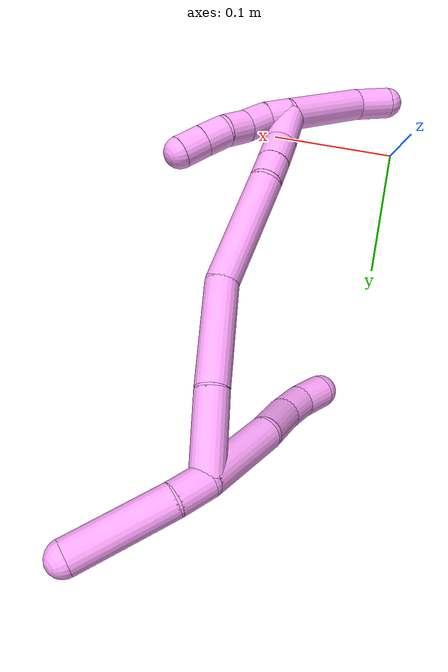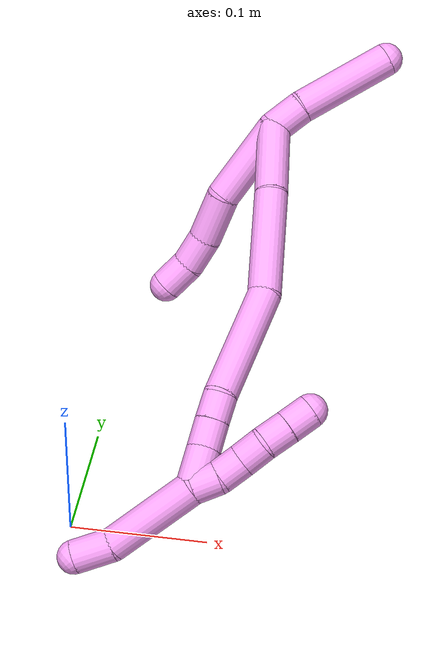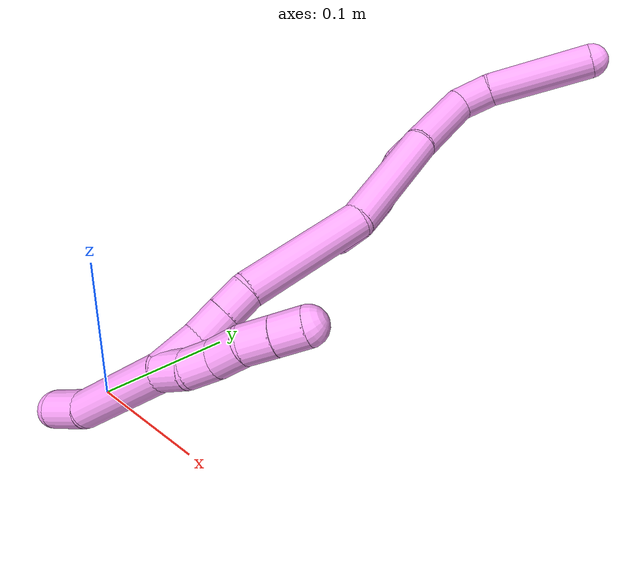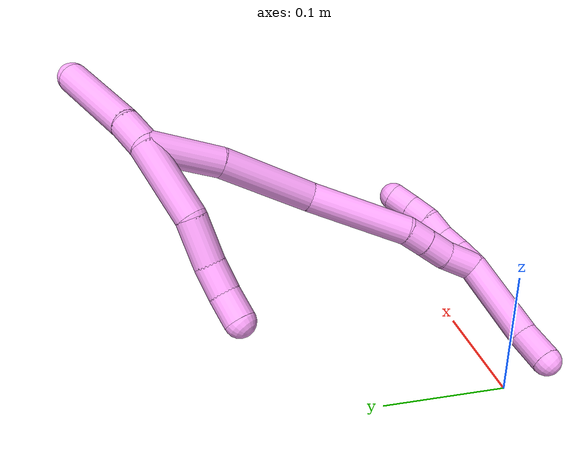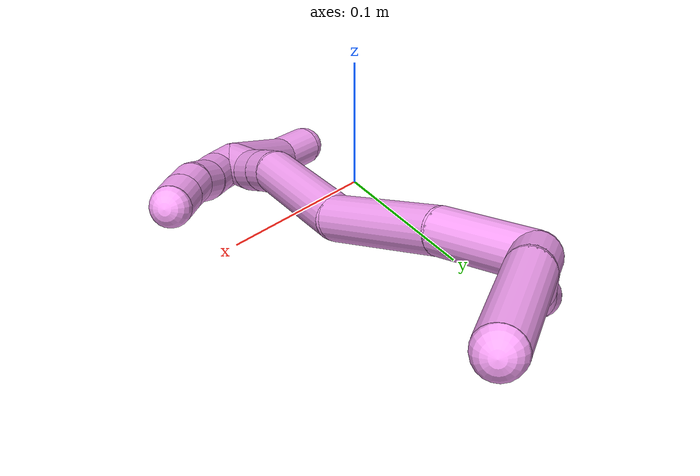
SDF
<sdf version="1.7">
 <world name="default">
  <model name="4">
   <static>0</static>
   <link name="4">
    <collision name="collision-cylinder-e_1_2_8">
     <pose>0.007045 -0.004112 -0.031001 3.00972 0.22158 2.07022</pose>
     <geometry><cylinder><radius>0.0125</radius><length>0.064112</length></cylinder></geometry>
     <surface>
      <friction><ode><mu>1.16</mu><mu2>1.16</mu2><slip1>0</slip1><slip2>0</slip2></ode></friction>
      <contact><ode><kp>1e+06</kp><kd>1</kd><max_vel>0</max_vel><min_depth>0.001</min_depth></ode></contact>
     </surface>
    </collision>
    <visual name="visual-cylinder-e_1_2_8">
     <pose>0.007045 -0.004112 -0.031001 3.00972 0.22158 2.07022</pose>
     <geometry><cylinder><radius>0.0125</radius><length>0.064112</length></cylinder></geometry>
     <material><ambient>1 0.65098 0.996078 1</ambient></material>
    </visual>
    <collision name="collision-cylinder-e_2_8_9">
     <pose>0.022894 -0.013042 -0.077717 2.84416 0.491731 2.06512</pose>
     <geometry><cylinder><radius>0.0125</radius><length>0.037295</length></cylinder></geometry>
     <surface>
      <friction><ode><mu>1.16</mu><mu2>1.16</mu2><slip1>0</slip1><slip2>0</slip2></ode></friction>
      <contact><ode><kp>1e+06</kp><kd>1</kd><max_vel>0</max_vel><min_depth>0.001</min_depth></ode></contact>
     </surface>
    </collision>
    <visual name="visual-cylinder-e_2_8_9">
     <pose>0.022894 -0.013042 -0.077717 2.84416 0.491731 2.06512</pose>
     <geometry><cylinder><radius>0.0125</radius><length>0.037295</length></cylinder></geometry>
     <material><ambient>1 0.65098 0.996078 1</ambient></material>
    </visual>
    <collision name="collision-cylinder-e_3_9_10">
     <pose>0.036025 -0.019842 -0.10494 2.97089 0.354825 2.25111</pose>
     <geometry><cylinder><radius>0.0125</radius><length>0.024904</length></cylinder></geometry>
     <surface>
      <friction><ode><mu>1.16</mu><mu2>1.16</mu2><slip1>0</slip1><slip2>0</slip2></ode></friction>
      <contact><ode><kp>1e+06</kp><kd>1</kd><max_vel>0</max_vel><min_depth>0.001</min_depth></ode></contact>
     </surface>
    </collision>
    <visual name="visual-cylinder-e_3_9_10">
     <pose>0.036025 -0.019842 -0.10494 2.97089 0.354825 2.25111</pose>
     <geometry><cylinder><radius>0.0125</radius><length>0.024904</length></cylinder></geometry>
     <material><ambient>1 0.65098 0.996078 1</ambient></material>
    </visual>
    <collision name="collision-cylinder-e_4_10_6">
     <pose>0.042695 -0.02145 -0.128051 -3.10921 0.199239 -2.8204</pose>
     <geometry><cylinder><radius>0.0125</radius><length>0.023689</length></cylinder></geometry>
     <surface>
      <friction><ode><mu>1.16</mu><mu2>1.16</mu2><slip1>0</slip1><slip2>0</slip2></ode></friction>
      <contact><ode><kp>1e+06</kp><kd>1</kd><max_vel>0</max_vel><min_depth>0.001</min_depth></ode></contact>
     </surface>
    </collision>
    <visual name="visual-cylinder-e_4_10_6">
     <pose>0.042695 -0.02145 -0.128051 -3.10921 0.199239 -2.8204</pose>
     <geometry><cylinder><radius>0.0125</radius><length>0.023689</length></cylinder></geometry>
     <material><ambient>1 0.65098 0.996078 1</ambient></material>
    </visual>
    <collision name="collision-cylinder-e_1_2_11">
     <pose>0.000431 -0.001057 0.012902 0.081761 0.0333 0.001362</pose>
     <geometry><cylinder><radius>0.0125</radius><length>0.025905</length></cylinder></geometry>
     <surface>
      <friction><ode><mu>1.16</mu><mu2>1.16</mu2><slip1>0</slip1><slip2>0</slip2></ode></friction>
      <contact><ode><kp>1e+06</kp><kd>1</kd><max_vel>0</max_vel><min_depth>0.001</min_depth></ode></contact>
     </surface>
    </collision>
    <visual name="visual-cylinder-e_1_2_11">
     <pose>0.000431 -0.001057 0.012902 0.081761 0.0333 0.001362</pose>
     <geometry><cylinder><radius>0.0125</radius><length>0.025905</length></cylinder></geometry>
     <material><ambient>1 0.65098 0.996078 1</ambient></material>
    </visual>
    <collision name="collision-cylinder-e_2_11_5">
     <pose>0.007017 -0.008697 0.061739 0.18118 0.166907 0.015197</pose>
     <geometry><cylinder><radius>0.0125</radius><length>0.074095</length></cylinder></geometry>
     <surface>
      <friction><ode><mu>1.16</mu><mu2>1.16</mu2><slip1>0</slip1><slip2>0</slip2></ode></friction>
      <contact><ode><kp>1e+06</kp><kd>1</kd><max_vel>0</max_vel><min_depth>0.001</min_depth></ode></contact>
     </surface>
    </collision>
    <visual name="visual-cylinder-e_2_11_5">
     <pose>0.007017 -0.008697 0.061739 0.18118 0.166907 0.015197</pose>
     <geometry><cylinder><radius>0.0125</radius><length>0.074095</length></cylinder></geometry>
     <material><ambient>1 0.65098 0.996078 1</ambient></material>
    </visual>
    <collision name="collision-cylinder-e_1_2_12">
     <pose>-0.010459 -0.021523 -0.017966 2.26635 -0.357057 -0.736195</pose>
     <geometry><cylinder><radius>0.0125</radius><length>0.059847</length></cylinder></geometry>
     <surface>
      <friction><ode><mu>1.16</mu><mu2>1.16</mu2><slip1>0</slip1><slip2>0</slip2></ode></friction>
      <contact><ode><kp>1e+06</kp><kd>1</kd><max_vel>0</max_vel><min_depth>0.001</min_depth></ode></contact>
     </surface>
    </collision>
    <visual name="visual-cylinder-e_1_2_12">
     <pose>-0.010459 -0.021523 -0.017966 2.26635 -0.357057 -0.736195</pose>
     <geometry><cylinder><radius>0.0125</radius><length>0.059847</length></cylinder></geometry>
     <material><ambient>1 0.65098 0.996078 1</ambient></material>
    </visual>
    <collision name="collision-cylinder-e_2_12_13">
     <pose>-0.029688 -0.072134 -0.062906 2.31852 -0.217573 -0.490399</pose>
     <geometry><cylinder><radius>0.0125</radius><length>0.081255</length></cylinder></geometry>
     <surface>
      <friction><ode><mu>1.16</mu><mu2>1.16</mu2><slip1>0</slip1><slip2>0</slip2></ode></friction>
      <contact><ode><kp>1e+06</kp><kd>1</kd><max_vel>0</max_vel><min_depth>0.001</min_depth></ode></contact>
     </surface>
    </collision>
    <visual name="visual-cylinder-e_2_12_13">
     <pose>-0.029688 -0.072134 -0.062906 2.31852 -0.217573 -0.490399</pose>
     <geometry><cylinder><radius>0.0125</radius><length>0.081255</length></cylinder></geometry>
     <material><ambient>1 0.65098 0.996078 1</ambient></material>
    </visual>
    <collision name="collision-cylinder-e_3_13_14">
     <pose>-0.053795 -0.121849 -0.125623 2.61818 -0.355834 -1.18246</pose>
     <geometry><cylinder><radius>0.0125</radius><length>0.088051</length></cylinder></geometry>
     <surface>
      <friction><ode><mu>1.16</mu><mu2>1.16</mu2><slip1>0</slip1><slip2>0</slip2></ode></friction>
      <contact><ode><kp>1e+06</kp><kd>1</kd><max_vel>0</max_vel><min_depth>0.001</min_depth></ode></contact>
     </surface>
    </collision>
    <visual name="visual-cylinder-e_3_13_14">
     <pose>-0.053795 -0.121849 -0.125623 2.61818 -0.355834 -1.18246</pose>
     <geometry><cylinder><radius>0.0125</radius><length>0.088051</length></cylinder></geometry>
     <material><ambient>1 0.65098 0.996078 1</ambient></material>
    </visual>
    <collision name="collision-cylinder-e_4_14_15">
     <pose>-0.070261 -0.147841 -0.169794 2.57476 -0.112566 -0.382173</pose>
     <geometry><cylinder><radius>0.0125</radius><length>0.020111</length></cylinder></geometry>
     <surface>
      <friction><ode><mu>1.16</mu><mu2>1.16</mu2><slip1>0</slip1><slip2>0</slip2></ode></friction>
      <contact><ode><kp>1e+06</kp><kd>1</kd><max_vel>0</max_vel><min_depth>0.001</min_depth></ode></contact>
     </surface>
    </collision>
    <visual name="visual-cylinder-e_4_14_15">
     <pose>-0.070261 -0.147841 -0.169794 2.57476 -0.112566 -0.382173</pose>
     <geometry><cylinder><radius>0.0125</radius><length>0.020111</length></cylinder></geometry>
     <material><ambient>1 0.65098 0.996078 1</ambient></material>
    </visual>
    <collision name="collision-cylinder-e_5_15_16">
     <pose>-0.07245 -0.15921 -0.187247 2.5545 -0.097386 -0.319677</pose>
     <geometry><cylinder><radius>0.0125</radius><length>0.02178</length></cylinder></geometry>
     <surface>
      <friction><ode><mu>1.16</mu><mu2>1.16</mu2><slip1>0</slip1><slip2>0</slip2></ode></friction>
      <contact><ode><kp>1e+06</kp><kd>1</kd><max_vel>0</max_vel><min_depth>0.001</min_depth></ode></contact>
     </surface>
    </collision>
    <visual name="visual-cylinder-e_5_15_16">
     <pose>-0.07245 -0.15921 -0.187247 2.5545 -0.097386 -0.319677</pose>
     <geometry><cylinder><radius>0.0125</radius><length>0.02178</length></cylinder></geometry>
     <material><ambient>1 0.65098 0.996078 1</ambient></material>
    </visual>
    <collision name="collision-cylinder-e_6_16_1">
     <pose>-0.077377 -0.17337 -0.20759 2.51725 -0.270508 -0.798105</pose>
     <geometry><cylinder><radius>0.0125</radius><length>0.028956</length></cylinder></geometry>
     <surface>
      <friction><ode><mu>1.16</mu><mu2>1.16</mu2><slip1>0</slip1><slip2>0</slip2></ode></friction>
      <contact><ode><kp>1e+06</kp><kd>1</kd><max_vel>0</max_vel><min_depth>0.001</min_depth></ode></contact>
     </surface>
    </collision>
    <visual name="visual-cylinder-e_6_16_1">
     <pose>-0.077377 -0.17337 -0.20759 2.51725 -0.270508 -0.798105</pose>
     <geometry><cylinder><radius>0.0125</radius><length>0.028956</length></cylinder></geometry>
     <material><ambient>1 0.65098 0.996078 1</ambient></material>
    </visual>
    <collision name="collision-cylinder-e_1_1_17">
     <pose>-0.07659 -0.176275 -0.253688 -2.99175 0.131623 -1.44112</pose>
     <geometry><cylinder><radius>0.0125</radius><length>0.070959</length></cylinder></geometry>
     <surface>
      <friction><ode><mu>1.16</mu><mu2>1.16</mu2><slip1>0</slip1><slip2>0</slip2></ode></friction>
      <contact><ode><kp>1e+06</kp><kd>1</kd><max_vel>0</max_vel><min_depth>0.001</min_depth></ode></contact>
     </surface>
    </collision>
    <visual name="visual-cylinder-e_1_1_17">
     <pose>-0.07659 -0.176275 -0.253688 -2.99175 0.131623 -1.44112</pose>
     <geometry><cylinder><radius>0.0125</radius><length>0.070959</length></cylinder></geometry>
     <material><ambient>1 0.65098 0.996078 1</ambient></material>
    </visual>
    <collision name="collision-cylinder-e_2_17_4">
     <pose>-0.072056 -0.164983 -0.30167 -2.71249 -0.008433 0.038695</pose>
     <geometry><cylinder><radius>0.0125</radius><length>0.029041</length></cylinder></geometry>
     <surface>
      <friction><ode><mu>1.16</mu><mu2>1.16</mu2><slip1>0</slip1><slip2>0</slip2></ode></friction>
      <contact><ode><kp>1e+06</kp><kd>1</kd><max_vel>0</max_vel><min_depth>0.001</min_depth></ode></contact>
     </surface>
    </collision>
    <visual name="visual-cylinder-e_2_17_4">
     <pose>-0.072056 -0.164983 -0.30167 -2.71249 -0.008433 0.038695</pose>
     <geometry><cylinder><radius>0.0125</radius><length>0.029041</length></cylinder></geometry>
     <material><ambient>1 0.65098 0.996078 1</ambient></material>
    </visual>
    <collision name="collision-cylinder-e_1_1_18">
     <pose>-0.080595 -0.185077 -0.209584 0.36392 0.065208 0.012002</pose>
     <geometry><cylinder><radius>0.0125</radius><length>0.02</length></cylinder></geometry>
     <surface>
      <friction><ode><mu>1.16</mu><mu2>1.16</mu2><slip1>0</slip1><slip2>0</slip2></ode></friction>
      <contact><ode><kp>1e+06</kp><kd>1</kd><max_vel>0</max_vel><min_depth>0.001</min_depth></ode></contact>
     </surface>
    </collision>
    <visual name="visual-cylinder-e_1_1_18">
     <pose>-0.080595 -0.185077 -0.209584 0.36392 0.065208 0.012002</pose>
     <geometry><cylinder><radius>0.0125</radius><length>0.02</length></cylinder></geometry>
     <material><ambient>1 0.65098 0.996078 1</ambient></material>
    </visual>
    <collision name="collision-cylinder-e_2_18_19">
     <pose>-0.07918 -0.189517 -0.190328 0.089114 0.076342 0.003405</pose>
     <geometry><cylinder><radius>0.0125</radius><length>0.02</length></cylinder></geometry>
     <surface>
      <friction><ode><mu>1.16</mu><mu2>1.16</mu2><slip1>0</slip1><slip2>0</slip2></ode></friction>
      <contact><ode><kp>1e+06</kp><kd>1</kd><max_vel>0</max_vel><min_depth>0.001</min_depth></ode></contact>
     </surface>
    </collision>
    <visual name="visual-cylinder-e_2_18_19">
     <pose>-0.07918 -0.189517 -0.190328 0.089114 0.076342 0.003405</pose>
     <geometry><cylinder><radius>0.0125</radius><length>0.02</length></cylinder></geometry>
     <material><ambient>1 0.65098 0.996078 1</ambient></material>
    </visual>
    <collision name="collision-cylinder-e_3_19_20">
     <pose>-0.079381 -0.191403 -0.170493 0.100511 -0.096444 -0.004855</pose>
     <geometry><cylinder><radius>0.0125</radius><length>0.02</length></cylinder></geometry>
     <surface>
      <friction><ode><mu>1.16</mu><mu2>1.16</mu2><slip1>0</slip1><slip2>0</slip2></ode></friction>
      <contact><ode><kp>1e+06</kp><kd>1</kd><max_vel>0</max_vel><min_depth>0.001</min_depth></ode></contact>
     </surface>
    </collision>
    <visual name="visual-cylinder-e_3_19_20">
     <pose>-0.079381 -0.191403 -0.170493 0.100511 -0.096444 -0.004855</pose>
     <geometry><cylinder><radius>0.0125</radius><length>0.02</length></cylinder></geometry>
     <material><ambient>1 0.65098 0.996078 1</ambient></material>
    </visual>
    <collision name="collision-cylinder-e_4_20_21">
     <pose>-0.078742 -0.193402 -0.15077 0.101517 0.160828 0.008188</pose>
     <geometry><cylinder><radius>0.0125</radius><length>0.02</length></cylinder></geometry>
     <surface>
      <friction><ode><mu>1.16</mu><mu2>1.16</mu2><slip1>0</slip1><slip2>0</slip2></ode></friction>
      <contact><ode><kp>1e+06</kp><kd>1</kd><max_vel>0</max_vel><min_depth>0.001</min_depth></ode></contact>
     </surface>
    </collision>
    <visual name="visual-cylinder-e_4_20_21">
     <pose>-0.078742 -0.193402 -0.15077 0.101517 0.160828 0.008188</pose>
     <geometry><cylinder><radius>0.0125</radius><length>0.02</length></cylinder></geometry>
     <material><ambient>1 0.65098 0.996078 1</ambient></material>
    </visual>
    <collision name="collision-cylinder-e_5_21_3">
     <pose>-0.075374 -0.195198 -0.131139 0.080979 0.177608 0.007214</pose>
     <geometry><cylinder><radius>0.0125</radius><length>0.02</length></cylinder></geometry>
     <surface>
      <friction><ode><mu>1.16</mu><mu2>1.16</mu2><slip1>0</slip1><slip2>0</slip2></ode></friction>
      <contact><ode><kp>1e+06</kp><kd>1</kd><max_vel>0</max_vel><min_depth>0.001</min_depth></ode></contact>
     </surface>
    </collision>
    <visual name="visual-cylinder-e_5_21_3">
     <pose>-0.075374 -0.195198 -0.131139 0.080979 0.177608 0.007214</pose>
     <geometry><cylinder><radius>0.0125</radius><length>0.02</length></cylinder></geometry>
     <material><ambient>1 0.65098 0.996078 1</ambient></material>
    </visual>
    <collision name="collision-sphere-3">
     <pose>-0.073607 -0.195994 -0.121329 0 -0 0</pose>
     <geometry><sphere><radius>0.0125</radius></sphere></geometry>
     <surface>
      <friction><ode><mu>1.16</mu><mu2>1.16</mu2><slip1>0</slip1><slip2>0</slip2></ode></friction>
      <contact><ode><kp>1e+06</kp><kd>1</kd><max_vel>0</max_vel><min_depth>0.001</min_depth></ode></contact>
     </surface>
    </collision>
    <visual name="visual-sphere-3">
     <pose>-0.073607 -0.195994 -0.121329 0 -0 0</pose>
     <geometry><sphere><radius>0.0125</radius></sphere></geometry>
     <material><ambient>1 0.65098 0.996078 1</ambient></material>
    </visual>
    <collision name="collision-sphere-21">
     <pose>-0.077141 -0.194402 -0.14095 0 -0 0</pose>
     <geometry><sphere><radius>0.0125</radius></sphere></geometry>
     <surface>
      <friction><ode><mu>1.16</mu><mu2>1.16</mu2><slip1>0</slip1><slip2>0</slip2></ode></friction>
      <contact><ode><kp>1e+06</kp><kd>1</kd><max_vel>0</max_vel><min_depth>0.001</min_depth></ode></contact>
     </surface>
    </collision>
    <visual name="visual-sphere-21">
     <pose>-0.077141 -0.194402 -0.14095 0 -0 0</pose>
     <geometry><sphere><radius>0.0125</radius></sphere></geometry>
     <material><ambient>1 0.65098 0.996078 1</ambient></material>
    </visual>
    <collision name="collision-sphere-20">
     <pose>-0.080344 -0.192401 -0.16059 0 -0 0</pose>
     <geometry><sphere><radius>0.0125</radius></sphere></geometry>
     <surface>
      <friction><ode><mu>1.16</mu><mu2>1.16</mu2><slip1>0</slip1><slip2>0</slip2></ode></friction>
      <contact><ode><kp>1e+06</kp><kd>1</kd><max_vel>0</max_vel><min_depth>0.001</min_depth></ode></contact>
     </surface>
    </collision>
    <visual name="visual-sphere-20">
     <pose>-0.080344 -0.192401 -0.16059 0 -0 0</pose>
     <geometry><sphere><radius>0.0125</radius></sphere></geometry>
     <material><ambient>1 0.65098 0.996078 1</ambient></material>
    </visual>
    <collision name="collision-sphere-19">
     <pose>-0.078418 -0.190404 -0.180397 0 -0 0</pose>
     <geometry><sphere><radius>0.0125</radius></sphere></geometry>
     <surface>
      <friction><ode><mu>1.16</mu><mu2>1.16</mu2><slip1>0</slip1><slip2>0</slip2></ode></friction>
      <contact><ode><kp>1e+06</kp><kd>1</kd><max_vel>0</max_vel><min_depth>0.001</min_depth></ode></contact>
     </surface>
    </collision>
    <visual name="visual-sphere-19">
     <pose>-0.078418 -0.190404 -0.180397 0 -0 0</pose>
     <geometry><sphere><radius>0.0125</radius></sphere></geometry>
     <material><ambient>1 0.65098 0.996078 1</ambient></material>
    </visual>
    <collision name="collision-sphere-11">
     <pose>0.000862 -0.002115 0.025804 0 -0 0</pose>
     <geometry><sphere><radius>0.0125</radius></sphere></geometry>
     <surface>
      <friction><ode><mu>1.16</mu><mu2>1.16</mu2><slip1>0</slip1><slip2>0</slip2></ode></friction>
      <contact><ode><kp>1e+06</kp><kd>1</kd><max_vel>0</max_vel><min_depth>0.001</min_depth></ode></contact>
     </surface>
    </collision>
    <visual name="visual-sphere-11">
     <pose>0.000862 -0.002115 0.025804 0 -0 0</pose>
     <geometry><sphere><radius>0.0125</radius></sphere></geometry>
     <material><ambient>1 0.65098 0.996078 1</ambient></material>
    </visual>
    <collision name="collision-sphere-6">
     <pose>0.04504 -0.021074 -0.139656 0 -0 0</pose>
     <geometry><sphere><radius>0.0125</radius></sphere></geometry>
     <surface>
      <friction><ode><mu>1.16</mu><mu2>1.16</mu2><slip1>0</slip1><slip2>0</slip2></ode></friction>
      <contact><ode><kp>1e+06</kp><kd>1</kd><max_vel>0</max_vel><min_depth>0.001</min_depth></ode></contact>
     </surface>
    </collision>
    <visual name="visual-sphere-6">
     <pose>0.04504 -0.021074 -0.139656 0 -0 0</pose>
     <geometry><sphere><radius>0.0125</radius></sphere></geometry>
     <material><ambient>1 0.65098 0.996078 1</ambient></material>
    </visual>
    <collision name="collision-sphere-10">
     <pose>0.040351 -0.021826 -0.116447 0 -0 0</pose>
     <geometry><sphere><radius>0.0125</radius></sphere></geometry>
     <surface>
      <friction><ode><mu>1.16</mu><mu2>1.16</mu2><slip1>0</slip1><slip2>0</slip2></ode></friction>
      <contact><ode><kp>1e+06</kp><kd>1</kd><max_vel>0</max_vel><min_depth>0.001</min_depth></ode></contact>
     </surface>
    </collision>
    <visual name="visual-sphere-10">
     <pose>0.040351 -0.021826 -0.116447 0 -0 0</pose>
     <geometry><sphere><radius>0.0125</radius></sphere></geometry>
     <material><ambient>1 0.65098 0.996078 1</ambient></material>
    </visual>
    <collision name="collision-sphere-9">
     <pose>0.031699 -0.017859 -0.093434 0 -0 0</pose>
     <geometry><sphere><radius>0.0125</radius></sphere></geometry>
     <surface>
      <friction><ode><mu>1.16</mu><mu2>1.16</mu2><slip1>0</slip1><slip2>0</slip2></ode></friction>
      <contact><ode><kp>1e+06</kp><kd>1</kd><max_vel>0</max_vel><min_depth>0.001</min_depth></ode></contact>
     </surface>
    </collision>
    <visual name="visual-sphere-9">
     <pose>0.031699 -0.017859 -0.093434 0 -0 0</pose>
     <geometry><sphere><radius>0.0125</radius></sphere></geometry>
     <material><ambient>1 0.65098 0.996078 1</ambient></material>
    </visual>
    <collision name="collision-sphere-2">
     <geometry><sphere><radius>0.0125</radius></sphere></geometry>
     <surface>
      <friction><ode><mu>1.16</mu><mu2>1.16</mu2><slip1>0</slip1><slip2>0</slip2></ode></friction>
      <contact><ode><kp>1e+06</kp><kd>1</kd><max_vel>0</max_vel><min_depth>0.001</min_depth></ode></contact>
     </surface>
    </collision>
    <visual name="visual-sphere-2">
     <geometry><sphere><radius>0.0125</radius></sphere></geometry>
     <material><ambient>1 0.65098 0.996078 1</ambient></material>
    </visual>
    <collision name="collision-sphere-8">
     <pose>0.01409 -0.008224 -0.062001 0 -0 0</pose>
     <geometry><sphere><radius>0.0125</radius></sphere></geometry>
     <surface>
      <friction><ode><mu>1.16</mu><mu2>1.16</mu2><slip1>0</slip1><slip2>0</slip2></ode></friction>
      <contact><ode><kp>1e+06</kp><kd>1</kd><max_vel>0</max_vel><min_depth>0.001</min_depth></ode></contact>
     </surface>
    </collision>
    <visual name="visual-sphere-8">
     <pose>0.01409 -0.008224 -0.062001 0 -0 0</pose>
     <geometry><sphere><radius>0.0125</radius></sphere></geometry>
     <material><ambient>1 0.65098 0.996078 1</ambient></material>
    </visual>
    <collision name="collision-sphere-5">
     <pose>0.013172 -0.01528 0.097674 0 -0 0</pose>
     <geometry><sphere><radius>0.0125</radius></sphere></geometry>
     <surface>
      <friction><ode><mu>1.16</mu><mu2>1.16</mu2><slip1>0</slip1><slip2>0</slip2></ode></friction>
      <contact><ode><kp>1e+06</kp><kd>1</kd><max_vel>0</max_vel><min_depth>0.001</min_depth></ode></contact>
     </surface>
    </collision>
    <visual name="visual-sphere-5">
     <pose>0.013172 -0.01528 0.097674 0 -0 0</pose>
     <geometry><sphere><radius>0.0125</radius></sphere></geometry>
     <material><ambient>1 0.65098 0.996078 1</ambient></material>
    </visual>
    <collision name="collision-sphere-12">
     <pose>-0.020918 -0.043047 -0.035932 0 -0 0</pose>
     <geometry><sphere><radius>0.0125</radius></sphere></geometry>
     <surface>
      <friction><ode><mu>1.16</mu><mu2>1.16</mu2><slip1>0</slip1><slip2>0</slip2></ode></friction>
      <contact><ode><kp>1e+06</kp><kd>1</kd><max_vel>0</max_vel><min_depth>0.001</min_depth></ode></contact>
     </surface>
    </collision>
    <visual name="visual-sphere-12">
     <pose>-0.020918 -0.043047 -0.035932 0 -0 0</pose>
     <geometry><sphere><radius>0.0125</radius></sphere></geometry>
     <material><ambient>1 0.65098 0.996078 1</ambient></material>
    </visual>
    <collision name="collision-sphere-13">
     <pose>-0.038457 -0.101222 -0.08988 0 -0 0</pose>
     <geometry><sphere><radius>0.0125</radius></sphere></geometry>
     <surface>
      <friction><ode><mu>1.16</mu><mu2>1.16</mu2><slip1>0</slip1><slip2>0</slip2></ode></friction>
      <contact><ode><kp>1e+06</kp><kd>1</kd><max_vel>0</max_vel><min_depth>0.001</min_depth></ode></contact>
     </surface>
    </collision>
    <visual name="visual-sphere-13">
     <pose>-0.038457 -0.101222 -0.08988 0 -0 0</pose>
     <geometry><sphere><radius>0.0125</radius></sphere></geometry>
     <material><ambient>1 0.65098 0.996078 1</ambient></material>
    </visual>
    <collision name="collision-sphere-14">
     <pose>-0.069132 -0.142476 -0.161365 0 -0 0</pose>
     <geometry><sphere><radius>0.0125</radius></sphere></geometry>
     <surface>
      <friction><ode><mu>1.16</mu><mu2>1.16</mu2><slip1>0</slip1><slip2>0</slip2></ode></friction>
      <contact><ode><kp>1e+06</kp><kd>1</kd><max_vel>0</max_vel><min_depth>0.001</min_depth></ode></contact>
     </surface>
    </collision>
    <visual name="visual-sphere-14">
     <pose>-0.069132 -0.142476 -0.161365 0 -0 0</pose>
     <geometry><sphere><radius>0.0125</radius></sphere></geometry>
     <material><ambient>1 0.65098 0.996078 1</ambient></material>
    </visual>
    <collision name="collision-sphere-15">
     <pose>-0.071391 -0.153206 -0.178223 0 -0 0</pose>
     <geometry><sphere><radius>0.0125</radius></sphere></geometry>
     <surface>
      <friction><ode><mu>1.16</mu><mu2>1.16</mu2><slip1>0</slip1><slip2>0</slip2></ode></friction>
      <contact><ode><kp>1e+06</kp><kd>1</kd><max_vel>0</max_vel><min_depth>0.001</min_depth></ode></contact>
     </surface>
    </collision>
    <visual name="visual-sphere-15">
     <pose>-0.071391 -0.153206 -0.178223 0 -0 0</pose>
     <geometry><sphere><radius>0.0125</radius></sphere></geometry>
     <material><ambient>1 0.65098 0.996078 1</ambient></material>
    </visual>
    <collision name="collision-sphere-16">
     <pose>-0.073509 -0.165214 -0.19627 0 -0 0</pose>
     <geometry><sphere><radius>0.0125</radius></sphere></geometry>
     <surface>
      <friction><ode><mu>1.16</mu><mu2>1.16</mu2><slip1>0</slip1><slip2>0</slip2></ode></friction>
      <contact><ode><kp>1e+06</kp><kd>1</kd><max_vel>0</max_vel><min_depth>0.001</min_depth></ode></contact>
     </surface>
    </collision>
    <visual name="visual-sphere-16">
     <pose>-0.073509 -0.165214 -0.19627 0 -0 0</pose>
     <geometry><sphere><radius>0.0125</radius></sphere></geometry>
     <material><ambient>1 0.65098 0.996078 1</ambient></material>
    </visual>
    <collision name="collision-sphere-1">
     <pose>-0.081246 -0.181525 -0.21891 0 -0 0</pose>
     <geometry><sphere><radius>0.0125</radius></sphere></geometry>
     <surface>
      <friction><ode><mu>1.16</mu><mu2>1.16</mu2><slip1>0</slip1><slip2>0</slip2></ode></friction>
      <contact><ode><kp>1e+06</kp><kd>1</kd><max_vel>0</max_vel><min_depth>0.001</min_depth></ode></contact>
     </surface>
    </collision>
    <visual name="visual-sphere-1">
     <pose>-0.081246 -0.181525 -0.21891 0 -0 0</pose>
     <geometry><sphere><radius>0.0125</radius></sphere></geometry>
     <material><ambient>1 0.65098 0.996078 1</ambient></material>
    </visual>
    <collision name="collision-sphere-18">
     <pose>-0.079943 -0.188629 -0.200259 0 -0 0</pose>
     <geometry><sphere><radius>0.0125</radius></sphere></geometry>
     <surface>
      <friction><ode><mu>1.16</mu><mu2>1.16</mu2><slip1>0</slip1><slip2>0</slip2></ode></friction>
      <contact><ode><kp>1e+06</kp><kd>1</kd><max_vel>0</max_vel><min_depth>0.001</min_depth></ode></contact>
     </surface>
    </collision>
    <visual name="visual-sphere-18">
     <pose>-0.079943 -0.188629 -0.200259 0 -0 0</pose>
     <geometry><sphere><radius>0.0125</radius></sphere></geometry>
     <material><ambient>1 0.65098 0.996078 1</ambient></material>
    </visual>
    <collision name="collision-sphere-17">
     <pose>-0.071933 -0.171024 -0.288467 0 -0 0</pose>
     <geometry><sphere><radius>0.0125</radius></sphere></geometry>
     <surface>
      <friction><ode><mu>1.16</mu><mu2>1.16</mu2><slip1>0</slip1><slip2>0</slip2></ode></friction>
      <contact><ode><kp>1e+06</kp><kd>1</kd><max_vel>0</max_vel><min_depth>0.001</min_depth></ode></contact>
     </surface>
    </collision>
    <visual name="visual-sphere-17">
     <pose>-0.071933 -0.171024 -0.288467 0 -0 0</pose>
     <geometry><sphere><radius>0.0125</radius></sphere></geometry>
     <material><ambient>1 0.65098 0.996078 1</ambient></material>
    </visual>
    <collision name="collision-sphere-4">
     <pose>-0.072178 -0.158942 -0.314874 0 -0 0</pose>
     <geometry><sphere><radius>0.0125</radius></sphere></geometry>
     <surface>
      <friction><ode><mu>1.16</mu><mu2>1.16</mu2><slip1>0</slip1><slip2>0</slip2></ode></friction>
      <contact><ode><kp>1e+06</kp><kd>1</kd><max_vel>0</max_vel><min_depth>0.001</min_depth></ode></contact>
     </surface>
    </collision>
    <visual name="visual-sphere-4">
     <pose>-0.072178 -0.158942 -0.314874 0 -0 0</pose>
     <geometry><sphere><radius>0.0125</radius></sphere></geometry>
     <material><ambient>1 0.65098 0.996078 1</ambient></material>
    </visual>
    <inertial>
     <pose>-0.032872 -0.090873 -0.106913 0 -0 0</pose>
     <mass>0.75</mass>
     <inertia><ixx>2.2e-05</ixx><ixy>0</ixy><ixz>0</ixz><iyy>-9.8e-05</iyy><iyz>0</iyz><izz>8.6e-05</izz></inertia>
    </inertial>
   </link>
   <pose>0.107477 0.259051 0.185042 0.641048 0.855795 1.45767</pose>
  </model>
 </world>
</sdf>
